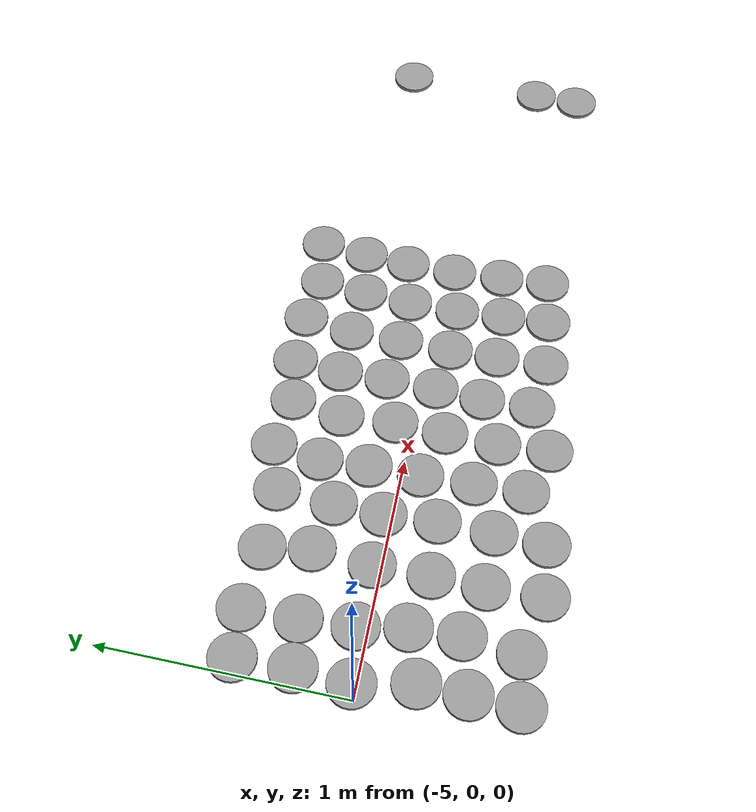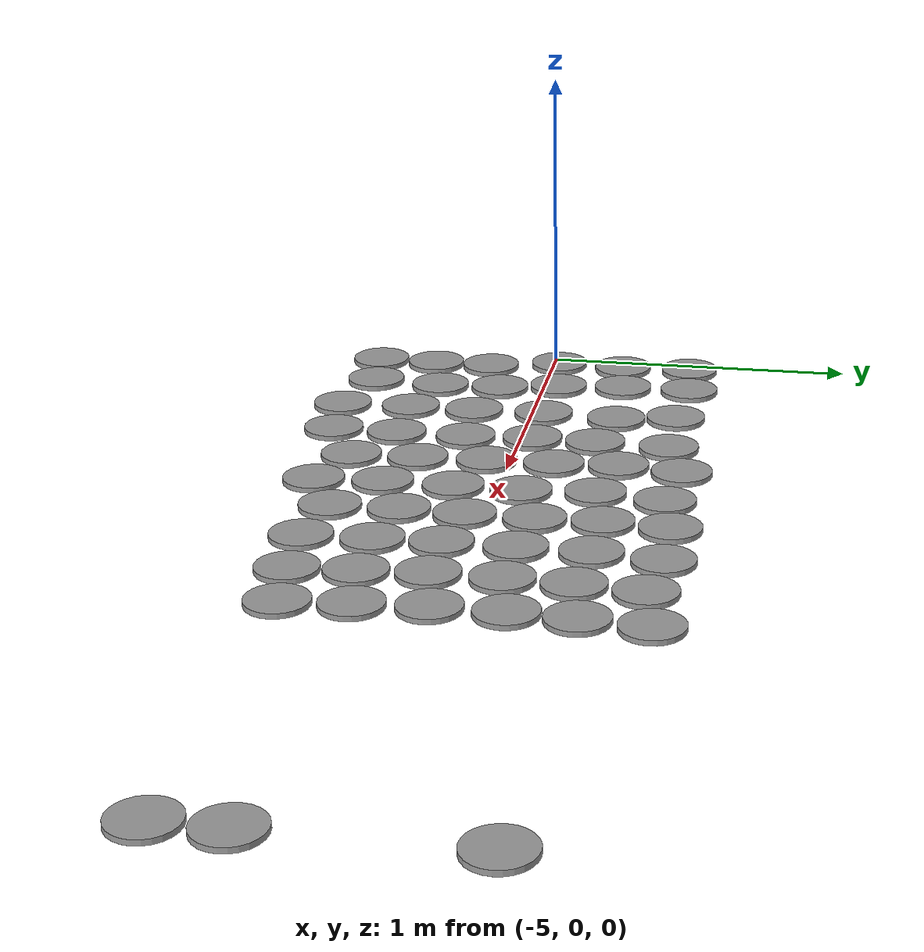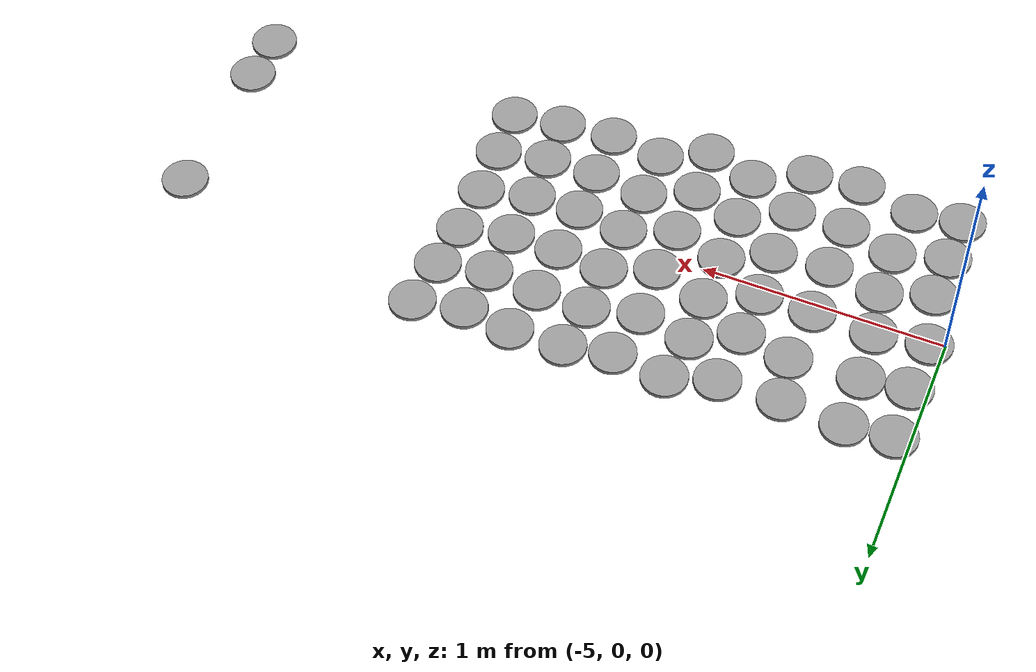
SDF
<sdf version="1.6">
 <world name="default">
  <model name="unit_cylinder_clone">
   <pose>-4.92824 0.244346 0.008114 0 0 -0.669076</pose>
   <link name="link">
    <inertial>
     <mass>1</mass>
     <inertia><ixx>0.145833</ixx><ixy>0</ixy><ixz>0</ixz><iyy>0.145833</iyy><iyz>0</iyz><izz>0.125</izz></inertia>
    </inertial>
    <collision name="collision">
     <geometry><cylinder><radius>0.0950718</radius><length>0.0162339</length></cylinder></geometry>
    </collision>
    <visual name="visual">
     <geometry><cylinder><radius>0.0950718</radius><length>0.0162339</length></cylinder></geometry>
     <material>
      <script><name>Gazebo/Grey</name><uri>file://media/materials/scripts/gazebo.material</uri></script>
     </material>
    </visual>
   </link>
  </model>
  <model name="unit_cylinder_clone_clone">
   <pose>-4.94005 0.019823 0.008108 0 -0 0.098454</pose>
   <link name="link">
    <inertial>
     <mass>1</mass>
     <inertia><ixx>0.145833</ixx><ixy>0</ixy><ixz>0</ixz><iyy>0.145833</iyy><iyz>0</iyz><izz>0.125</izz></inertia>
    </inertial>
    <collision name="collision">
     <geometry><cylinder><radius>0.0950718</radius><length>0.0162339</length></cylinder></geometry>
    </collision>
    <visual name="visual">
     <geometry><cylinder><radius>0.0950718</radius><length>0.0162339</length></cylinder></geometry>
     <material>
      <script><name>Gazebo/Grey</name><uri>file://media/materials/scripts/gazebo.material</uri></script>
     </material>
    </visual>
   </link>
  </model>
  <model name="unit_cylinder_clone_clone_1">
   <pose>-4.88991 -0.213171 0.008116 0 -0 0.00121</pose>
   <link name="link">
    <inertial>
     <mass>1</mass>
     <inertia><ixx>0.145833</ixx><ixy>0</ixy><ixz>0</ixz><iyy>0.145833</iyy><iyz>0</iyz><izz>0.125</izz></inertia>
    </inertial>
    <collision name="collision">
     <geometry><cylinder><radius>0.0950718</radius><length>0.0162339</length></cylinder></geometry>
    </collision>
    <visual name="visual">
     <geometry><cylinder><radius>0.0950718</radius><length>0.0162339</length></cylinder></geometry>
     <material>
      <script><name>Gazebo/Grey</name><uri>file://media/materials/scripts/gazebo.material</uri></script>
     </material>
    </visual>
   </link>
  </model>
  <model name="unit_cylinder_clone_clone_2">
   <pose>-4.89151 -0.407672 0.008113 5e-06 -0 0</pose>
   <link name="link">
    <inertial>
     <mass>1</mass>
     <inertia><ixx>0.145833</ixx><ixy>0</ixy><ixz>0</ixz><iyy>0.145833</iyy><iyz>0</iyz><izz>0.125</izz></inertia>
    </inertial>
    <collision name="collision">
     <geometry><cylinder><radius>0.0950718</radius><length>0.0162339</length></cylinder></geometry>
    </collision>
    <visual name="visual">
     <geometry><cylinder><radius>0.0950718</radius><length>0.0162339</length></cylinder></geometry>
     <material>
      <script><name>Gazebo/Grey</name><uri>file://media/materials/scripts/gazebo.material</uri></script>
     </material>
    </visual>
   </link>
  </model>
  <model name="unit_cylinder_clone_clone_3">
   <pose>-4.89624 -0.604172 0.008113 5e-06 -0 0</pose>
   <link name="link">
    <inertial>
     <mass>1</mass>
     <inertia><ixx>0.145833</ixx><ixy>0</ixy><ixz>0</ixz><iyy>0.145833</iyy><iyz>0</iyz><izz>0.125</izz></inertia>
    </inertial>
    <collision name="collision">
     <geometry><cylinder><radius>0.0950718</radius><length>0.0162339</length></cylinder></geometry>
    </collision>
    <visual name="visual">
     <geometry><cylinder><radius>0.0950718</radius><length>0.0162339</length></cylinder></geometry>
     <material>
      <script><name>Gazebo/Grey</name><uri>file://media/materials/scripts/gazebo.material</uri></script>
     </material>
    </visual>
   </link>
  </model>
  <model name="unit_cylinder_clone_clone_4">
   <pose>-4.74309 0.493456 0.008111 -0 6e-06 -1.60408</pose>
   <link name="link">
    <inertial>
     <mass>1</mass>
     <inertia><ixx>0.145833</ixx><ixy>0</ixy><ixz>0</ixz><iyy>0.145833</iyy><iyz>0</iyz><izz>0.125</izz></inertia>
    </inertial>
    <collision name="collision">
     <geometry><cylinder><radius>0.0950718</radius><length>0.0162339</length></cylinder></geometry>
    </collision>
    <visual name="visual">
     <geometry><cylinder><radius>0.0950718</radius><length>0.0162339</length></cylinder></geometry>
     <material>
      <script><name>Gazebo/Grey</name><uri>file://media/materials/scripts/gazebo.material</uri></script>
     </material>
    </visual>
   </link>
  </model>
  <model name="unit_cylinder_clone_clone_5">
   <pose>-4.93657 0.475133 0.008114 0 0 -0.035931</pose>
   <link name="link">
    <inertial>
     <mass>1</mass>
     <inertia><ixx>0.145833</ixx><ixy>0</ixy><ixz>0</ixz><iyy>0.145833</iyy><iyz>0</iyz><izz>0.125</izz></inertia>
    </inertial>
    <collision name="collision">
     <geometry><cylinder><radius>0.0950718</radius><length>0.0162339</length></cylinder></geometry>
    </collision>
    <visual name="visual">
     <geometry><cylinder><radius>0.0950718</radius><length>0.0162339</length></cylinder></geometry>
     <material>
      <script><name>Gazebo/Grey</name><uri>file://media/materials/scripts/gazebo.material</uri></script>
     </material>
    </visual>
   </link>
  </model>
  <model name="unit_cylinder_clone_clone_7">
   <pose>-4.72333 0.050462 0.008117 0 -0 0.000482</pose>
   <link name="link">
    <inertial>
     <mass>1</mass>
     <inertia><ixx>0.145833</ixx><ixy>0</ixy><ixz>0</ixz><iyy>0.145833</iyy><iyz>0</iyz><izz>0.125</izz></inertia>
    </inertial>
    <collision name="collision">
     <geometry><cylinder><radius>0.0950718</radius><length>0.0162339</length></cylinder></geometry>
    </collision>
    <visual name="visual">
     <geometry><cylinder><radius>0.0950718</radius><length>0.0162339</length></cylinder></geometry>
     <material>
      <script><name>Gazebo/Grey</name><uri>file://media/materials/scripts/gazebo.material</uri></script>
     </material>
    </visual>
   </link>
  </model>
  <model name="unit_cylinder_clone_clone_8">
   <pose>-4.68614 -0.145367 0.008108 0 -0 0.000518</pose>
   <link name="link">
    <inertial>
     <mass>1</mass>
     <inertia><ixx>0.145833</ixx><ixy>0</ixy><ixz>0</ixz><iyy>0.145833</iyy><iyz>0</iyz><izz>0.125</izz></inertia>
    </inertial>
    <collision name="collision">
     <geometry><cylinder><radius>0.0950718</radius><length>0.0162339</length></cylinder></geometry>
    </collision>
    <visual name="visual">
     <geometry><cylinder><radius>0.0950718</radius><length>0.0162339</length></cylinder></geometry>
     <material>
      <script><name>Gazebo/Grey</name><uri>file://media/materials/scripts/gazebo.material</uri></script>
     </material>
    </visual>
   </link>
  </model>
  <model name="unit_cylinder_clone_clone_9">
   <pose>-4.67778 -0.349152 0.008111 0 -0 0</pose>
   <link name="link">
    <inertial>
     <mass>1</mass>
     <inertia><ixx>0.145833</ixx><ixy>0</ixy><ixz>0</ixz><iyy>0.145833</iyy><iyz>0</iyz><izz>0.125</izz></inertia>
    </inertial>
    <collision name="collision">
     <geometry><cylinder><radius>0.0950718</radius><length>0.0162339</length></cylinder></geometry>
    </collision>
    <visual name="visual">
     <geometry><cylinder><radius>0.0950718</radius><length>0.0162339</length></cylinder></geometry>
     <material>
      <script><name>Gazebo/Grey</name><uri>file://media/materials/scripts/gazebo.material</uri></script>
     </material>
    </visual>
   </link>
  </model>
  <model name="unit_cylinder_clone_clone_10">
   <pose>-4.70032 -0.577507 0.008108 0 -0 0</pose>
   <link name="link">
    <inertial>
     <mass>1</mass>
     <inertia><ixx>0.145833</ixx><ixy>0</ixy><ixz>0</ixz><iyy>0.145833</iyy><iyz>0</iyz><izz>0.125</izz></inertia>
    </inertial>
    <collision name="collision">
     <geometry><cylinder><radius>0.0950718</radius><length>0.0162339</length></cylinder></geometry>
    </collision>
    <visual name="visual">
     <geometry><cylinder><radius>0.0950718</radius><length>0.0162339</length></cylinder></geometry>
     <material>
      <script><name>Gazebo/Grey</name><uri>file://media/materials/scripts/gazebo.material</uri></script>
     </material>
    </visual>
   </link>
  </model>
  <model name="unit_cylinder_clone_clone_11">
   <pose>-4.73967 0.268855 0.008112 0 0 -0.462715</pose>
   <link name="link">
    <inertial>
     <mass>1</mass>
     <inertia><ixx>0.145833</ixx><ixy>0</ixy><ixz>0</ixz><iyy>0.145833</iyy><iyz>0</iyz><izz>0.125</izz></inertia>
    </inertial>
    <collision name="collision">
     <geometry><cylinder><radius>0.0950718</radius><length>0.0162339</length></cylinder></geometry>
    </collision>
    <visual name="visual">
     <geometry><cylinder><radius>0.0950718</radius><length>0.0162339</length></cylinder></geometry>
     <material>
      <script><name>Gazebo/Grey</name><uri>file://media/materials/scripts/gazebo.material</uri></script>
     </material>
    </visual>
   </link>
  </model>
  <model name="unit_cylinder_clone_clone_12">
   <pose>-4.48597 0.47576 0.008484 -0.001635 0.003501 -0.231539</pose>
   <link name="link">
    <inertial>
     <mass>1</mass>
     <inertia><ixx>0.145833</ixx><ixy>0</ixy><ixz>0</ixz><iyy>0.145833</iyy><iyz>0</iyz><izz>0.125</izz></inertia>
    </inertial>
    <collision name="collision">
     <geometry><cylinder><radius>0.0950718</radius><length>0.0162339</length></cylinder></geometry>
    </collision>
    <visual name="visual">
     <geometry><cylinder><radius>0.0950718</radius><length>0.0162339</length></cylinder></geometry>
     <material>
      <script><name>Gazebo/Grey</name><uri>file://media/materials/scripts/gazebo.material</uri></script>
     </material>
    </visual>
   </link>
  </model>
  <model name="unit_cylinder_clone_clone_13">
   <pose>-4.45178 0.283309 0.008113 0 0 -0.013302</pose>
   <link name="link">
    <inertial>
     <mass>1</mass>
     <inertia><ixx>0.145833</ixx><ixy>0</ixy><ixz>0</ixz><iyy>0.145833</iyy><iyz>0</iyz><izz>0.125</izz></inertia>
    </inertial>
    <collision name="collision">
     <geometry><cylinder><radius>0.0950718</radius><length>0.0162339</length></cylinder></geometry>
    </collision>
    <visual name="visual">
     <geometry><cylinder><radius>0.0950718</radius><length>0.0162339</length></cylinder></geometry>
     <material>
      <script><name>Gazebo/Grey</name><uri>file://media/materials/scripts/gazebo.material</uri></script>
     </material>
    </visual>
   </link>
  </model>
  <model name="unit_cylinder_clone_clone_14">
   <pose>-4.46934 0.039984 0.008108 0 -0 0</pose>
   <link name="link">
    <inertial>
     <mass>1</mass>
     <inertia><ixx>0.145833</ixx><ixy>0</ixy><ixz>0</ixz><iyy>0.145833</iyy><iyz>0</iyz><izz>0.125</izz></inertia>
    </inertial>
    <collision name="collision">
     <geometry><cylinder><radius>0.0950718</radius><length>0.0162339</length></cylinder></geometry>
    </collision>
    <visual name="visual">
     <geometry><cylinder><radius>0.0950718</radius><length>0.0162339</length></cylinder></geometry>
     <material>
      <script><name>Gazebo/Grey</name><uri>file://media/materials/scripts/gazebo.material</uri></script>
     </material>
    </visual>
   </link>
  </model>
  <model name="unit_cylinder_clone_clone_15">
   <pose>-4.46416 -0.191836 0.008113 0 -0 0</pose>
   <link name="link">
    <inertial>
     <mass>1</mass>
     <inertia><ixx>0.145833</ixx><ixy>0</ixy><ixz>0</ixz><iyy>0.145833</iyy><iyz>0</iyz><izz>0.125</izz></inertia>
    </inertial>
    <collision name="collision">
     <geometry><cylinder><radius>0.0950718</radius><length>0.0162339</length></cylinder></geometry>
    </collision>
    <visual name="visual">
     <geometry><cylinder><radius>0.0950718</radius><length>0.0162339</length></cylinder></geometry>
     <material>
      <script><name>Gazebo/Grey</name><uri>file://media/materials/scripts/gazebo.material</uri></script>
     </material>
    </visual>
   </link>
  </model>
  <model name="unit_cylinder_clone_clone_16">
   <pose>-4.46665 -0.405888 0.008117 0 -0 0</pose>
   <link name="link">
    <inertial>
     <mass>1</mass>
     <inertia><ixx>0.145833</ixx><ixy>0</ixy><ixz>0</ixz><iyy>0.145833</iyy><iyz>0</iyz><izz>0.125</izz></inertia>
    </inertial>
    <collision name="collision">
     <geometry><cylinder><radius>0.0950718</radius><length>0.0162339</length></cylinder></geometry>
    </collision>
    <visual name="visual">
     <geometry><cylinder><radius>0.0950718</radius><length>0.0162339</length></cylinder></geometry>
     <material>
      <script><name>Gazebo/Grey</name><uri>file://media/materials/scripts/gazebo.material</uri></script>
     </material>
    </visual>
   </link>
  </model>
  <model name="unit_cylinder_clone_clone_17">
   <pose>-4.46064 -0.635367 0.008111 0 -0 0</pose>
   <link name="link">
    <inertial>
     <mass>1</mass>
     <inertia><ixx>0.145833</ixx><ixy>0</ixy><ixz>0</ixz><iyy>0.145833</iyy><iyz>0</iyz><izz>0.125</izz></inertia>
    </inertial>
    <collision name="collision">
     <geometry><cylinder><radius>0.0950718</radius><length>0.0162339</length></cylinder></geometry>
    </collision>
    <visual name="visual">
     <geometry><cylinder><radius>0.0950718</radius><length>0.0162339</length></cylinder></geometry>
     <material>
      <script><name>Gazebo/Grey</name><uri>file://media/materials/scripts/gazebo.material</uri></script>
     </material>
    </visual>
   </link>
  </model>
  <model name="unit_cylinder_clone_clone_18">
   <pose>-4.24417 -0.611687 0.008108 0 -0 0</pose>
   <link name="link">
    <inertial>
     <mass>1</mass>
     <inertia><ixx>0.145833</ixx><ixy>0</ixy><ixz>0</ixz><iyy>0.145833</iyy><iyz>0</iyz><izz>0.125</izz></inertia>
    </inertial>
    <collision name="collision">
     <geometry><cylinder><radius>0.0950718</radius><length>0.0162339</length></cylinder></geometry>
    </collision>
    <visual name="visual">
     <geometry><cylinder><radius>0.0950718</radius><length>0.0162339</length></cylinder></geometry>
     <material>
      <script><name>Gazebo/Grey</name><uri>file://media/materials/scripts/gazebo.material</uri></script>
     </material>
    </visual>
   </link>
  </model>
  <model name="unit_cylinder_clone_clone_19">
   <pose>-4.23882 -0.40217 0.008108 0 -0 0</pose>
   <link name="link">
    <inertial>
     <mass>1</mass>
     <inertia><ixx>0.145833</ixx><ixy>0</ixy><ixz>0</ixz><iyy>0.145833</iyy><iyz>0</iyz><izz>0.125</izz></inertia>
    </inertial>
    <collision name="collision">
     <geometry><cylinder><radius>0.0950718</radius><length>0.0162339</length></cylinder></geometry>
    </collision>
    <visual name="visual">
     <geometry><cylinder><radius>0.0950718</radius><length>0.0162339</length></cylinder></geometry>
     <material>
      <script><name>Gazebo/Grey</name><uri>file://media/materials/scripts/gazebo.material</uri></script>
     </material>
    </visual>
   </link>
  </model>
  <model name="unit_cylinder_clone_clone_20">
   <pose>-4.23553 -0.175422 0.008113 5e-06 -0 0</pose>
   <link name="link">
    <inertial>
     <mass>1</mass>
     <inertia><ixx>0.145833</ixx><ixy>0</ixy><ixz>0</ixz><iyy>0.145833</iyy><iyz>0</iyz><izz>0.125</izz></inertia>
    </inertial>
    <collision name="collision">
     <geometry><cylinder><radius>0.0950718</radius><length>0.0162339</length></cylinder></geometry>
    </collision>
    <visual name="visual">
     <geometry><cylinder><radius>0.0950718</radius><length>0.0162339</length></cylinder></geometry>
     <material>
      <script><name>Gazebo/Grey</name><uri>file://media/materials/scripts/gazebo.material</uri></script>
     </material>
    </visual>
   </link>
  </model>
  <model name="unit_cylinder_clone_clone_21">
   <pose>-4.25035 0.039573 0.008108 0 -0 0</pose>
   <link name="link">
    <inertial>
     <mass>1</mass>
     <inertia><ixx>0.145833</ixx><ixy>0</ixy><ixz>0</ixz><iyy>0.145833</iyy><iyz>0</iyz><izz>0.125</izz></inertia>
    </inertial>
    <collision name="collision">
     <geometry><cylinder><radius>0.0950718</radius><length>0.0162339</length></cylinder></geometry>
    </collision>
    <visual name="visual">
     <geometry><cylinder><radius>0.0950718</radius><length>0.0162339</length></cylinder></geometry>
     <material>
      <script><name>Gazebo/Grey</name><uri>file://media/materials/scripts/gazebo.material</uri></script>
     </material>
    </visual>
   </link>
  </model>
  <model name="unit_cylinder_clone_clone_22">
   <pose>-4.24467 0.2429 0.008108 0 -0 0.001298</pose>
   <link name="link">
    <inertial>
     <mass>1</mass>
     <inertia><ixx>0.145833</ixx><ixy>0</ixy><ixz>0</ixz><iyy>0.145833</iyy><iyz>0</iyz><izz>0.125</izz></inertia>
    </inertial>
    <collision name="collision">
     <geometry><cylinder><radius>0.0950718</radius><length>0.0162339</length></cylinder></geometry>
    </collision>
    <visual name="visual">
     <geometry><cylinder><radius>0.0950718</radius><length>0.0162339</length></cylinder></geometry>
     <material>
      <script><name>Gazebo/Grey</name><uri>file://media/materials/scripts/gazebo.material</uri></script>
     </material>
    </visual>
   </link>
  </model>
  <model name="unit_cylinder_clone_clone_23">
   <pose>-4.2309 0.480876 0.008107 0 0 -0.001963</pose>
   <link name="link">
    <inertial>
     <mass>1</mass>
     <inertia><ixx>0.145833</ixx><ixy>0</ixy><ixz>0</ixz><iyy>0.145833</iyy><iyz>0</iyz><izz>0.125</izz></inertia>
    </inertial>
    <collision name="collision">
     <geometry><cylinder><radius>0.0950718</radius><length>0.0162339</length></cylinder></geometry>
    </collision>
    <visual name="visual">
     <geometry><cylinder><radius>0.0950718</radius><length>0.0162339</length></cylinder></geometry>
     <material>
      <script><name>Gazebo/Grey</name><uri>file://media/materials/scripts/gazebo.material</uri></script>
     </material>
    </visual>
   </link>
  </model>
  <model name="unit_cylinder_clone_clone_24">
   <pose>-4.03583 0.541954 0.008108 0 -0 0</pose>
   <link name="link">
    <inertial>
     <mass>1</mass>
     <inertia><ixx>0.145833</ixx><ixy>0</ixy><ixz>0</ixz><iyy>0.145833</iyy><iyz>0</iyz><izz>0.125</izz></inertia>
    </inertial>
    <collision name="collision">
     <geometry><cylinder><radius>0.0950718</radius><length>0.0162339</length></cylinder></geometry>
    </collision>
    <visual name="visual">
     <geometry><cylinder><radius>0.0950718</radius><length>0.0162339</length></cylinder></geometry>
     <material>
      <script><name>Gazebo/Grey</name><uri>file://media/materials/scripts/gazebo.material</uri></script>
     </material>
    </visual>
   </link>
  </model>
  <model name="unit_cylinder_clone_clone_25">
   <pose>-4.06381 0.341531 0.008113 5e-06 -0 0</pose>
   <link name="link">
    <inertial>
     <mass>1</mass>
     <inertia><ixx>0.145833</ixx><ixy>0</ixy><ixz>0</ixz><iyy>0.145833</iyy><iyz>0</iyz><izz>0.125</izz></inertia>
    </inertial>
    <collision name="collision">
     <geometry><cylinder><radius>0.0950718</radius><length>0.0162339</length></cylinder></geometry>
    </collision>
    <visual name="visual">
     <geometry><cylinder><radius>0.0950718</radius><length>0.0162339</length></cylinder></geometry>
     <material>
      <script><name>Gazebo/Grey</name><uri>file://media/materials/scripts/gazebo.material</uri></script>
     </material>
    </visual>
   </link>
  </model>
  <model name="unit_cylinder_clone_clone_26">
   <pose>-4.05114 0.140238 0.008108 0 -0 0</pose>
   <link name="link">
    <inertial>
     <mass>1</mass>
     <inertia><ixx>0.145833</ixx><ixy>0</ixy><ixz>0</ixz><iyy>0.145833</iyy><iyz>0</iyz><izz>0.125</izz></inertia>
    </inertial>
    <collision name="collision">
     <geometry><cylinder><radius>0.0950718</radius><length>0.0162339</length></cylinder></geometry>
    </collision>
    <visual name="visual">
     <geometry><cylinder><radius>0.0950718</radius><length>0.0162339</length></cylinder></geometry>
     <material>
      <script><name>Gazebo/Grey</name><uri>file://media/materials/scripts/gazebo.material</uri></script>
     </material>
    </visual>
   </link>
  </model>
  <model name="unit_cylinder_clone_clone_27">
   <pose>-4.05025 -0.072851 0.008108 0 -0 0</pose>
   <link name="link">
    <inertial>
     <mass>1</mass>
     <inertia><ixx>0.145833</ixx><ixy>0</ixy><ixz>0</ixz><iyy>0.145833</iyy><iyz>0</iyz><izz>0.125</izz></inertia>
    </inertial>
    <collision name="collision">
     <geometry><cylinder><radius>0.0950718</radius><length>0.0162339</length></cylinder></geometry>
    </collision>
    <visual name="visual">
     <geometry><cylinder><radius>0.0950718</radius><length>0.0162339</length></cylinder></geometry>
     <material>
      <script><name>Gazebo/Grey</name><uri>file://media/materials/scripts/gazebo.material</uri></script>
     </material>
    </visual>
   </link>
  </model>
  <model name="unit_cylinder_clone_clone_28">
   <pose>-4.04202 -0.290432 0.008113 5e-06 -0 0</pose>
   <link name="link">
    <inertial>
     <mass>1</mass>
     <inertia><ixx>0.145833</ixx><ixy>0</ixy><ixz>0</ixz><iyy>0.145833</iyy><iyz>0</iyz><izz>0.125</izz></inertia>
    </inertial>
    <collision name="collision">
     <geometry><cylinder><radius>0.0950718</radius><length>0.0162339</length></cylinder></geometry>
    </collision>
    <visual name="visual">
     <geometry><cylinder><radius>0.0950718</radius><length>0.0162339</length></cylinder></geometry>
     <material>
      <script><name>Gazebo/Grey</name><uri>file://media/materials/scripts/gazebo.material</uri></script>
     </material>
    </visual>
   </link>
  </model>
  <model name="unit_cylinder_clone_clone_29">
   <pose>-4.03468 -0.501989 0.008108 0 -0 0</pose>
   <link name="link">
    <inertial>
     <mass>1</mass>
     <inertia><ixx>0.145833</ixx><ixy>0</ixy><ixz>0</ixz><iyy>0.145833</iyy><iyz>0</iyz><izz>0.125</izz></inertia>
    </inertial>
    <collision name="collision">
     <geometry><cylinder><radius>0.0950718</radius><length>0.0162339</length></cylinder></geometry>
    </collision>
    <visual name="visual">
     <geometry><cylinder><radius>0.0950718</radius><length>0.0162339</length></cylinder></geometry>
     <material>
      <script><name>Gazebo/Grey</name><uri>file://media/materials/scripts/gazebo.material</uri></script>
     </material>
    </visual>
   </link>
  </model>
  <model name="unit_cylinder_clone_clone_30">
   <pose>-3.83027 -0.570426 0.008113 5e-06 -0 0</pose>
   <link name="link">
    <inertial>
     <mass>1</mass>
     <inertia><ixx>0.145833</ixx><ixy>0</ixy><ixz>0</ixz><iyy>0.145833</iyy><iyz>0</iyz><izz>0.125</izz></inertia>
    </inertial>
    <collision name="collision">
     <geometry><cylinder><radius>0.0950718</radius><length>0.0162339</length></cylinder></geometry>
    </collision>
    <visual name="visual">
     <geometry><cylinder><radius>0.0950718</radius><length>0.0162339</length></cylinder></geometry>
     <material>
      <script><name>Gazebo/Grey</name><uri>file://media/materials/scripts/gazebo.material</uri></script>
     </material>
    </visual>
   </link>
  </model>
  <model name="unit_cylinder_clone_clone_31">
   <pose>-3.84434 -0.357022 0.008113 5e-06 -0 0</pose>
   <link name="link">
    <inertial>
     <mass>1</mass>
     <inertia><ixx>0.145833</ixx><ixy>0</ixy><ixz>0</ixz><iyy>0.145833</iyy><iyz>0</iyz><izz>0.125</izz></inertia>
    </inertial>
    <collision name="collision">
     <geometry><cylinder><radius>0.0950718</radius><length>0.0162339</length></cylinder></geometry>
    </collision>
    <visual name="visual">
     <geometry><cylinder><radius>0.0950718</radius><length>0.0162339</length></cylinder></geometry>
     <material>
      <script><name>Gazebo/Grey</name><uri>file://media/materials/scripts/gazebo.material</uri></script>
     </material>
    </visual>
   </link>
  </model>
  <model name="unit_cylinder_clone_clone_32">
   <pose>-3.83894 -0.136252 0.008108 0 -0 0</pose>
   <link name="link">
    <inertial>
     <mass>1</mass>
     <inertia><ixx>0.145833</ixx><ixy>0</ixy><ixz>0</ixz><iyy>0.145833</iyy><iyz>0</iyz><izz>0.125</izz></inertia>
    </inertial>
    <collision name="collision">
     <geometry><cylinder><radius>0.0950718</radius><length>0.0162339</length></cylinder></geometry>
    </collision>
    <visual name="visual">
     <geometry><cylinder><radius>0.0950718</radius><length>0.0162339</length></cylinder></geometry>
     <material>
      <script><name>Gazebo/Grey</name><uri>file://media/materials/scripts/gazebo.material</uri></script>
     </material>
    </visual>
   </link>
  </model>
  <model name="unit_cylinder_clone_clone_33">
   <pose>-3.83188 0.07411 0.008113 5e-06 -0 0</pose>
   <link name="link">
    <inertial>
     <mass>1</mass>
     <inertia><ixx>0.145833</ixx><ixy>0</ixy><ixz>0</ixz><iyy>0.145833</iyy><iyz>0</iyz><izz>0.125</izz></inertia>
    </inertial>
    <collision name="collision">
     <geometry><cylinder><radius>0.0950718</radius><length>0.0162339</length></cylinder></geometry>
    </collision>
    <visual name="visual">
     <geometry><cylinder><radius>0.0950718</radius><length>0.0162339</length></cylinder></geometry>
     <material>
      <script><name>Gazebo/Grey</name><uri>file://media/materials/scripts/gazebo.material</uri></script>
     </material>
    </visual>
   </link>
  </model>
  <model name="unit_cylinder_clone_clone_34">
   <pose>-3.84755 0.300225 0.008108 0 -0 0</pose>
   <link name="link">
    <inertial>
     <mass>1</mass>
     <inertia><ixx>0.145833</ixx><ixy>0</ixy><ixz>0</ixz><iyy>0.145833</iyy><iyz>0</iyz><izz>0.125</izz></inertia>
    </inertial>
    <collision name="collision">
     <geometry><cylinder><radius>0.0950718</radius><length>0.0162339</length></cylinder></geometry>
    </collision>
    <visual name="visual">
     <geometry><cylinder><radius>0.0950718</radius><length>0.0162339</length></cylinder></geometry>
     <material>
      <script><name>Gazebo/Grey</name><uri>file://media/materials/scripts/gazebo.material</uri></script>
     </material>
    </visual>
   </link>
  </model>
  <model name="unit_cylinder_clone_clone_35">
   <pose>-3.81316 0.514902 0.008108 0 -0 0</pose>
   <link name="link">
    <inertial>
     <mass>1</mass>
     <inertia><ixx>0.145833</ixx><ixy>0</ixy><ixz>0</ixz><iyy>0.145833</iyy><iyz>0</iyz><izz>0.125</izz></inertia>
    </inertial>
    <collision name="collision">
     <geometry><cylinder><radius>0.0950718</radius><length>0.0162339</length></cylinder></geometry>
    </collision>
    <visual name="visual">
     <geometry><cylinder><radius>0.0950718</radius><length>0.0162339</length></cylinder></geometry>
     <material>
      <script><name>Gazebo/Grey</name><uri>file://media/materials/scripts/gazebo.material</uri></script>
     </material>
    </visual>
   </link>
  </model>
  <model name="unit_cylinder_clone_clone_37">
   <pose>-3.61968 0.55251 0.008114 5e-06 -0 0</pose>
   <link name="link">
    <inertial>
     <mass>1</mass>
     <inertia><ixx>0.145833</ixx><ixy>0</ixy><ixz>0</ixz><iyy>0.145833</iyy><iyz>0</iyz><izz>0.125</izz></inertia>
    </inertial>
    <collision name="collision">
     <geometry><cylinder><radius>0.0950718</radius><length>0.0162339</length></cylinder></geometry>
    </collision>
    <visual name="visual">
     <geometry><cylinder><radius>0.0950718</radius><length>0.0162339</length></cylinder></geometry>
     <material>
      <script><name>Gazebo/Grey</name><uri>file://media/materials/scripts/gazebo.material</uri></script>
     </material>
    </visual>
   </link>
  </model>
  <model name="unit_cylinder_clone_clone_38">
   <pose>-3.63795 0.351457 0.008108 0 -0 0</pose>
   <link name="link">
    <inertial>
     <mass>1</mass>
     <inertia><ixx>0.145833</ixx><ixy>0</ixy><ixz>0</ixz><iyy>0.145833</iyy><iyz>0</iyz><izz>0.125</izz></inertia>
    </inertial>
    <collision name="collision">
     <geometry><cylinder><radius>0.0950718</radius><length>0.0162339</length></cylinder></geometry>
    </collision>
    <visual name="visual">
     <geometry><cylinder><radius>0.0950718</radius><length>0.0162339</length></cylinder></geometry>
     <material>
      <script><name>Gazebo/Grey</name><uri>file://media/materials/scripts/gazebo.material</uri></script>
     </material>
    </visual>
   </link>
  </model>
  <model name="unit_cylinder_clone_clone_39">
   <pose>-3.63286 0.149399 0.008108 0 -0 0</pose>
   <link name="link">
    <inertial>
     <mass>1</mass>
     <inertia><ixx>0.145833</ixx><ixy>0</ixy><ixz>0</ixz><iyy>0.145833</iyy><iyz>0</iyz><izz>0.125</izz></inertia>
    </inertial>
    <collision name="collision">
     <geometry><cylinder><radius>0.0950718</radius><length>0.0162339</length></cylinder></geometry>
    </collision>
    <visual name="visual">
     <geometry><cylinder><radius>0.0950718</radius><length>0.0162339</length></cylinder></geometry>
     <material>
      <script><name>Gazebo/Grey</name><uri>file://media/materials/scripts/gazebo.material</uri></script>
     </material>
    </visual>
   </link>
  </model>
  <model name="unit_cylinder_clone_clone_40">
   <pose>-3.63599 -0.060996 0.008114 5e-06 -0 0</pose>
   <link name="link">
    <inertial>
     <mass>1</mass>
     <inertia><ixx>0.145833</ixx><ixy>0</ixy><ixz>0</ixz><iyy>0.145833</iyy><iyz>0</iyz><izz>0.125</izz></inertia>
    </inertial>
    <collision name="collision">
     <geometry><cylinder><radius>0.0950718</radius><length>0.0162339</length></cylinder></geometry>
    </collision>
    <visual name="visual">
     <geometry><cylinder><radius>0.0950718</radius><length>0.0162339</length></cylinder></geometry>
     <material>
      <script><name>Gazebo/Grey</name><uri>file://media/materials/scripts/gazebo.material</uri></script>
     </material>
    </visual>
   </link>
  </model>
  <model name="unit_cylinder_clone_clone_41">
   <pose>-3.64706 -0.261955 0.008108 0 -0 0</pose>
   <link name="link">
    <inertial>
     <mass>1</mass>
     <inertia><ixx>0.145833</ixx><ixy>0</ixy><ixz>0</ixz><iyy>0.145833</iyy><iyz>0</iyz><izz>0.125</izz></inertia>
    </inertial>
    <collision name="collision">
     <geometry><cylinder><radius>0.0950718</radius><length>0.0162339</length></cylinder></geometry>
    </collision>
    <visual name="visual">
     <geometry><cylinder><radius>0.0950718</radius><length>0.0162339</length></cylinder></geometry>
     <material>
      <script><name>Gazebo/Grey</name><uri>file://media/materials/scripts/gazebo.material</uri></script>
     </material>
    </visual>
   </link>
  </model>
  <model name="unit_cylinder_clone_clone_42">
   <pose>-3.6421 -0.471575 0.008108 0 -0 0</pose>
   <link name="link">
    <inertial>
     <mass>1</mass>
     <inertia><ixx>0.145833</ixx><ixy>0</ixy><ixz>0</ixz><iyy>0.145833</iyy><iyz>0</iyz><izz>0.125</izz></inertia>
    </inertial>
    <collision name="collision">
     <geometry><cylinder><radius>0.0950718</radius><length>0.0162339</length></cylinder></geometry>
    </collision>
    <visual name="visual">
     <geometry><cylinder><radius>0.0950718</radius><length>0.0162339</length></cylinder></geometry>
     <material>
      <script><name>Gazebo/Grey</name><uri>file://media/materials/scripts/gazebo.material</uri></script>
     </material>
    </visual>
   </link>
  </model>
  <model name="unit_cylinder_clone_clone_43">
   <pose>-3.42331 -0.501574 0.008108 0 -0 0</pose>
   <link name="link">
    <inertial>
     <mass>1</mass>
     <inertia><ixx>0.145833</ixx><ixy>0</ixy><ixz>0</ixz><iyy>0.145833</iyy><iyz>0</iyz><izz>0.125</izz></inertia>
    </inertial>
    <collision name="collision">
     <geometry><cylinder><radius>0.0950718</radius><length>0.0162339</length></cylinder></geometry>
    </collision>
    <visual name="visual">
     <geometry><cylinder><radius>0.0950718</radius><length>0.0162339</length></cylinder></geometry>
     <material>
      <script><name>Gazebo/Grey</name><uri>file://media/materials/scripts/gazebo.material</uri></script>
     </material>
    </visual>
   </link>
  </model>
  <model name="unit_cylinder_clone_clone_44">
   <pose>-3.42832 -0.291028 0.008108 0 -0 0</pose>
   <link name="link">
    <inertial>
     <mass>1</mass>
     <inertia><ixx>0.145833</ixx><ixy>0</ixy><ixz>0</ixz><iyy>0.145833</iyy><iyz>0</iyz><izz>0.125</izz></inertia>
    </inertial>
    <collision name="collision">
     <geometry><cylinder><radius>0.0950718</radius><length>0.0162339</length></cylinder></geometry>
    </collision>
    <visual name="visual">
     <geometry><cylinder><radius>0.0950718</radius><length>0.0162339</length></cylinder></geometry>
     <material>
      <script><name>Gazebo/Grey</name><uri>file://media/materials/scripts/gazebo.material</uri></script>
     </material>
    </visual>
   </link>
  </model>
  <model name="unit_cylinder_clone_clone_45">
   <pose>-3.43348 -0.088963 0.008108 0 -0 0</pose>
   <link name="link">
    <inertial>
     <mass>1</mass>
     <inertia><ixx>0.145833</ixx><ixy>0</ixy><ixz>0</ixz><iyy>0.145833</iyy><iyz>0</iyz><izz>0.125</izz></inertia>
    </inertial>
    <collision name="collision">
     <geometry><cylinder><radius>0.0950718</radius><length>0.0162339</length></cylinder></geometry>
    </collision>
    <visual name="visual">
     <geometry><cylinder><radius>0.0950718</radius><length>0.0162339</length></cylinder></geometry>
     <material>
      <script><name>Gazebo/Grey</name><uri>file://media/materials/scripts/gazebo.material</uri></script>
     </material>
    </visual>
   </link>
  </model>
  <model name="unit_cylinder_clone_clone_46">
   <pose>-3.42932 0.128822 0.008114 5e-06 -0 0</pose>
   <link name="link">
    <inertial>
     <mass>1</mass>
     <inertia><ixx>0.145833</ixx><ixy>0</ixy><ixz>0</ixz><iyy>0.145833</iyy><iyz>0</iyz><izz>0.125</izz></inertia>
    </inertial>
    <collision name="collision">
     <geometry><cylinder><radius>0.0950718</radius><length>0.0162339</length></cylinder></geometry>
    </collision>
    <visual name="visual">
     <geometry><cylinder><radius>0.0950718</radius><length>0.0162339</length></cylinder></geometry>
     <material>
      <script><name>Gazebo/Grey</name><uri>file://media/materials/scripts/gazebo.material</uri></script>
     </material>
    </visual>
   </link>
  </model>
  <model name="unit_cylinder_clone_clone_47">
   <pose>-3.42606 0.347572 0.008108 0 -0 0</pose>
   <link name="link">
    <inertial>
     <mass>1</mass>
     <inertia><ixx>0.145833</ixx><ixy>0</ixy><ixz>0</ixz><iyy>0.145833</iyy><iyz>0</iyz><izz>0.125</izz></inertia>
    </inertial>
    <collision name="collision">
     <geometry><cylinder><radius>0.0950718</radius><length>0.0162339</length></cylinder></geometry>
    </collision>
    <visual name="visual">
     <geometry><cylinder><radius>0.0950718</radius><length>0.0162339</length></cylinder></geometry>
     <material>
      <script><name>Gazebo/Grey</name><uri>file://media/materials/scripts/gazebo.material</uri></script>
     </material>
    </visual>
   </link>
  </model>
  <model name="unit_cylinder_clone_clone_48">
   <pose>-3.39848 0.557881 0.008108 0 -0 0</pose>
   <link name="link">
    <inertial>
     <mass>1</mass>
     <inertia><ixx>0.145833</ixx><ixy>0</ixy><ixz>0</ixz><iyy>0.145833</iyy><iyz>0</iyz><izz>0.125</izz></inertia>
    </inertial>
    <collision name="collision">
     <geometry><cylinder><radius>0.0950718</radius><length>0.0162339</length></cylinder></geometry>
    </collision>
    <visual name="visual">
     <geometry><cylinder><radius>0.0950718</radius><length>0.0162339</length></cylinder></geometry>
     <material>
      <script><name>Gazebo/Grey</name><uri>file://media/materials/scripts/gazebo.material</uri></script>
     </material>
    </visual>
   </link>
  </model>
  <model name="unit_cylinder_clone_clone_49">
   <pose>-3.19401 0.53228 0.008108 0 -0 0</pose>
   <link name="link">
    <inertial>
     <mass>1</mass>
     <inertia><ixx>0.145833</ixx><ixy>0</ixy><ixz>0</ixz><iyy>0.145833</iyy><iyz>0</iyz><izz>0.125</izz></inertia>
    </inertial>
    <collision name="collision">
     <geometry><cylinder><radius>0.0950718</radius><length>0.0162339</length></cylinder></geometry>
    </collision>
    <visual name="visual">
     <geometry><cylinder><radius>0.0950718</radius><length>0.0162339</length></cylinder></geometry>
     <material>
      <script><name>Gazebo/Grey</name><uri>file://media/materials/scripts/gazebo.material</uri></script>
     </material>
    </visual>
   </link>
  </model>
  <model name="unit_cylinder_clone_clone_50">
   <pose>-3.2135 0.32953 0.008114 5e-06 -0 0</pose>
   <link name="link">
    <inertial>
     <mass>1</mass>
     <inertia><ixx>0.145833</ixx><ixy>0</ixy><ixz>0</ixz><iyy>0.145833</iyy><iyz>0</iyz><izz>0.125</izz></inertia>
    </inertial>
    <collision name="collision">
     <geometry><cylinder><radius>0.0950718</radius><length>0.0162339</length></cylinder></geometry>
    </collision>
    <visual name="visual">
     <geometry><cylinder><radius>0.0950718</radius><length>0.0162339</length></cylinder></geometry>
     <material>
      <script><name>Gazebo/Grey</name><uri>file://media/materials/scripts/gazebo.material</uri></script>
     </material>
    </visual>
   </link>
  </model>
  <model name="unit_cylinder_clone_clone_51">
   <pose>-3.22473 0.126832 0.008114 5e-06 -0 0</pose>
   <link name="link">
    <inertial>
     <mass>1</mass>
     <inertia><ixx>0.145833</ixx><ixy>0</ixy><ixz>0</ixz><iyy>0.145833</iyy><iyz>0</iyz><izz>0.125</izz></inertia>
    </inertial>
    <collision name="collision">
     <geometry><cylinder><radius>0.0950718</radius><length>0.0162339</length></cylinder></geometry>
    </collision>
    <visual name="visual">
     <geometry><cylinder><radius>0.0950718</radius><length>0.0162339</length></cylinder></geometry>
     <material>
      <script><name>Gazebo/Grey</name><uri>file://media/materials/scripts/gazebo.material</uri></script>
     </material>
    </visual>
   </link>
  </model>
  <model name="unit_cylinder_clone_clone_52">
   <pose>-3.22784 -0.084363 0.008114 5e-06 -0 0</pose>
   <link name="link">
    <inertial>
     <mass>1</mass>
     <inertia><ixx>0.145833</ixx><ixy>0</ixy><ixz>0</ixz><iyy>0.145833</iyy><iyz>0</iyz><izz>0.125</izz></inertia>
    </inertial>
    <collision name="collision">
     <geometry><cylinder><radius>0.0950718</radius><length>0.0162339</length></cylinder></geometry>
    </collision>
    <visual name="visual">
     <geometry><cylinder><radius>0.0950718</radius><length>0.0162339</length></cylinder></geometry>
     <material>
      <script><name>Gazebo/Grey</name><uri>file://media/materials/scripts/gazebo.material</uri></script>
     </material>
    </visual>
   </link>
  </model>
  <model name="unit_cylinder_clone_clone_53">
   <pose>-3.21444 -0.287407 0.008114 5e-06 -0 0</pose>
   <link name="link">
    <inertial>
     <mass>1</mass>
     <inertia><ixx>0.145833</ixx><ixy>0</ixy><ixz>0</ixz><iyy>0.145833</iyy><iyz>0</iyz><izz>0.125</izz></inertia>
    </inertial>
    <collision name="collision">
     <geometry><cylinder><radius>0.0950718</radius><length>0.0162339</length></cylinder></geometry>
    </collision>
    <visual name="visual">
     <geometry><cylinder><radius>0.0950718</radius><length>0.0162339</length></cylinder></geometry>
     <material>
      <script><name>Gazebo/Grey</name><uri>file://media/materials/scripts/gazebo.material</uri></script>
     </material>
    </visual>
   </link>
  </model>
  <model name="unit_cylinder_clone_clone_54">
   <pose>-3.2028 -0.483075 0.008111 0 -0 0</pose>
   <link name="link">
    <inertial>
     <mass>1</mass>
     <inertia><ixx>0.145833</ixx><ixy>0</ixy><ixz>0</ixz><iyy>0.145833</iyy><iyz>0</iyz><izz>0.125</izz></inertia>
    </inertial>
    <collision name="collision">
     <geometry><cylinder><radius>0.0950718</radius><length>0.0162339</length></cylinder></geometry>
    </collision>
    <visual name="visual">
     <geometry><cylinder><radius>0.0950718</radius><length>0.0162339</length></cylinder></geometry>
     <material>
      <script><name>Gazebo/Grey</name><uri>file://media/materials/scripts/gazebo.material</uri></script>
     </material>
    </visual>
   </link>
  </model>
  <model name="unit_cylinder_clone_clone_55">
   <pose>-2.99588 -0.453667 0.008111 0 -0 0</pose>
   <link name="link">
    <inertial>
     <mass>1</mass>
     <inertia><ixx>0.145833</ixx><ixy>0</ixy><ixz>0</ixz><iyy>0.145833</iyy><iyz>0</iyz><izz>0.125</izz></inertia>
    </inertial>
    <collision name="collision">
     <geometry><cylinder><radius>0.0950718</radius><length>0.0162339</length></cylinder></geometry>
    </collision>
    <visual name="visual">
     <geometry><cylinder><radius>0.0950718</radius><length>0.0162339</length></cylinder></geometry>
     <material>
      <script><name>Gazebo/Grey</name><uri>file://media/materials/scripts/gazebo.material</uri></script>
     </material>
    </visual>
   </link>
  </model>
  <model name="unit_cylinder_clone_clone_56">
   <pose>-3.00941 -0.249676 0.008111 0 -0 0</pose>
   <link name="link">
    <inertial>
     <mass>1</mass>
     <inertia><ixx>0.145833</ixx><ixy>0</ixy><ixz>0</ixz><iyy>0.145833</iyy><iyz>0</iyz><izz>0.125</izz></inertia>
    </inertial>
    <collision name="collision">
     <geometry><cylinder><radius>0.0950718</radius><length>0.0162339</length></cylinder></geometry>
    </collision>
    <visual name="visual">
     <geometry><cylinder><radius>0.0950718</radius><length>0.0162339</length></cylinder></geometry>
     <material>
      <script><name>Gazebo/Grey</name><uri>file://media/materials/scripts/gazebo.material</uri></script>
     </material>
    </visual>
   </link>
  </model>
  <model name="unit_cylinder_clone_clone_57">
   <pose>-3.02284 -0.037339 0.008111 0 -0 0</pose>
   <link name="link">
    <inertial>
     <mass>1</mass>
     <inertia><ixx>0.145833</ixx><ixy>0</ixy><ixz>0</ixz><iyy>0.145833</iyy><iyz>0</iyz><izz>0.125</izz></inertia>
    </inertial>
    <collision name="collision">
     <geometry><cylinder><radius>0.0950718</radius><length>0.0162339</length></cylinder></geometry>
    </collision>
    <visual name="visual">
     <geometry><cylinder><radius>0.0950718</radius><length>0.0162339</length></cylinder></geometry>
     <material>
      <script><name>Gazebo/Grey</name><uri>file://media/materials/scripts/gazebo.material</uri></script>
     </material>
    </visual>
   </link>
  </model>
  <model name="unit_cylinder_clone_clone_58">
   <pose>-3.01969 0.17471 0.008111 0 -0 0</pose>
   <link name="link">
    <inertial>
     <mass>1</mass>
     <inertia><ixx>0.145833</ixx><ixy>0</ixy><ixz>0</ixz><iyy>0.145833</iyy><iyz>0</iyz><izz>0.125</izz></inertia>
    </inertial>
    <collision name="collision">
     <geometry><cylinder><radius>0.0950718</radius><length>0.0162339</length></cylinder></geometry>
    </collision>
    <visual name="visual">
     <geometry><cylinder><radius>0.0950718</radius><length>0.0162339</length></cylinder></geometry>
     <material>
      <script><name>Gazebo/Grey</name><uri>file://media/materials/scripts/gazebo.material</uri></script>
     </material>
    </visual>
   </link>
  </model>
  <model name="unit_cylinder_clone_clone_59">
   <pose>-3.0085 0.369752 0.008111 0 -0 0</pose>
   <link name="link">
    <inertial>
     <mass>1</mass>
     <inertia><ixx>0.145833</ixx><ixy>0</ixy><ixz>0</ixz><iyy>0.145833</iyy><iyz>0</iyz><izz>0.125</izz></inertia>
    </inertial>
    <collision name="collision">
     <geometry><cylinder><radius>0.0950718</radius><length>0.0162339</length></cylinder></geometry>
    </collision>
    <visual name="visual">
     <geometry><cylinder><radius>0.0950718</radius><length>0.0162339</length></cylinder></geometry>
     <material>
      <script><name>Gazebo/Grey</name><uri>file://media/materials/scripts/gazebo.material</uri></script>
     </material>
    </visual>
   </link>
  </model>
  <model name="unit_cylinder_clone_clone_60">
   <pose>-2.9889 0.57334 0.008111 0 -0 0</pose>
   <link name="link">
    <inertial>
     <mass>1</mass>
     <inertia><ixx>0.145833</ixx><ixy>0</ixy><ixz>0</ixz><iyy>0.145833</iyy><iyz>0</iyz><izz>0.125</izz></inertia>
    </inertial>
    <collision name="collision">
     <geometry><cylinder><radius>0.0950718</radius><length>0.0162339</length></cylinder></geometry>
    </collision>
    <visual name="visual">
     <geometry><cylinder><radius>0.0950718</radius><length>0.0162339</length></cylinder></geometry>
     <material>
      <script><name>Gazebo/Grey</name><uri>file://media/materials/scripts/gazebo.material</uri></script>
     </material>
    </visual>
   </link>
  </model>
  <model name="unit_cylinder_clone_clone_62">
   <pose>-1.87343 0.364026 0.008111 0 -0 0</pose>
   <link name="link">
    <inertial>
     <mass>1</mass>
     <inertia><ixx>0.145833</ixx><ixy>0</ixy><ixz>0</ixz><iyy>0.145833</iyy><iyz>0</iyz><izz>0.125</izz></inertia>
    </inertial>
    <collision name="collision">
     <geometry><cylinder><radius>0.0950718</radius><length>0.0162339</length></cylinder></geometry>
    </collision>
    <visual name="visual">
     <geometry><cylinder><radius>0.0950718</radius><length>0.0162339</length></cylinder></geometry>
     <material>
      <script><name>Gazebo/Grey</name><uri>file://media/materials/scripts/gazebo.material</uri></script>
     </material>
    </visual>
   </link>
  </model>
  <model name="unit_cylinder_clone_clone_65">
   <pose>-1.87391 -0.251961 0.008111 0 -0 0</pose>
   <link name="link">
    <inertial>
     <mass>1</mass>
     <inertia><ixx>0.145833</ixx><ixy>0</ixy><ixz>0</ixz><iyy>0.145833</iyy><iyz>0</iyz><izz>0.125</izz></inertia>
    </inertial>
    <collision name="collision">
     <geometry><cylinder><radius>0.0950718</radius><length>0.0162339</length></cylinder></geometry>
    </collision>
    <visual name="visual">
     <geometry><cylinder><radius>0.0950718</radius><length>0.0162339</length></cylinder></geometry>
     <material>
      <script><name>Gazebo/Grey</name><uri>file://media/materials/scripts/gazebo.material</uri></script>
     </material>
    </visual>
   </link>
  </model>
  <model name="unit_cylinder_clone_clone_66">
   <pose>-1.87685 -0.451494 0.008111 0 -0 0</pose>
   <link name="link">
    <inertial>
     <mass>1</mass>
     <inertia><ixx>0.145833</ixx><ixy>0</ixy><ixz>0</ixz><iyy>0.145833</iyy><iyz>0</iyz><izz>0.125</izz></inertia>
    </inertial>
    <collision name="collision">
     <geometry><cylinder><radius>0.0950718</radius><length>0.0162339</length></cylinder></geometry>
    </collision>
    <visual name="visual">
     <geometry><cylinder><radius>0.0950718</radius><length>0.0162339</length></cylinder></geometry>
     <material>
      <script><name>Gazebo/Grey</name><uri>file://media/materials/scripts/gazebo.material</uri></script>
     </material>
    </visual>
   </link>
  </model>
 </world>
</sdf>
